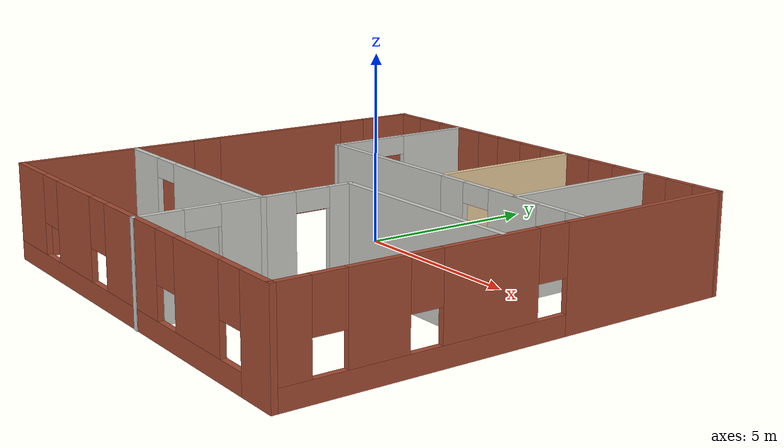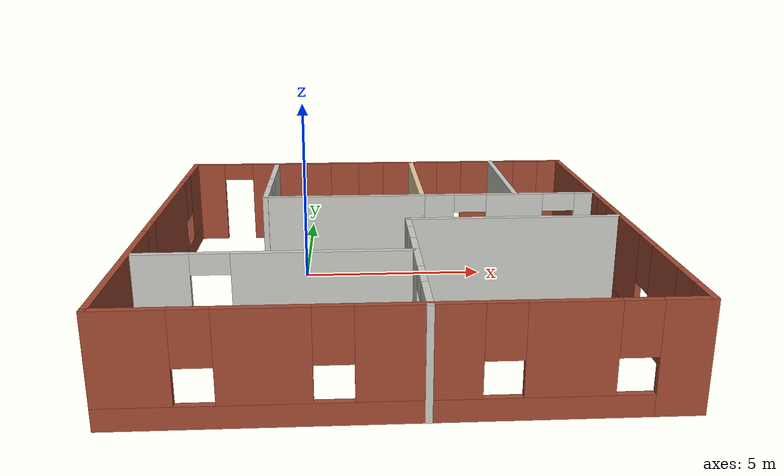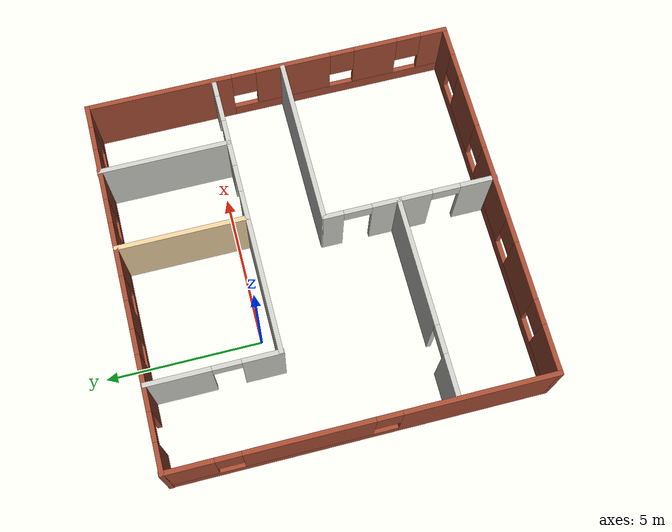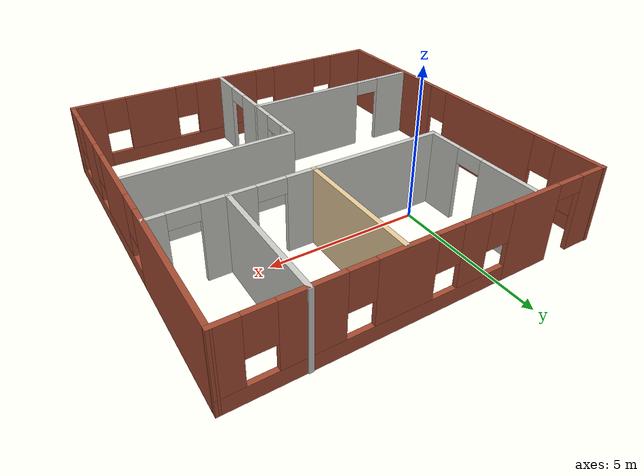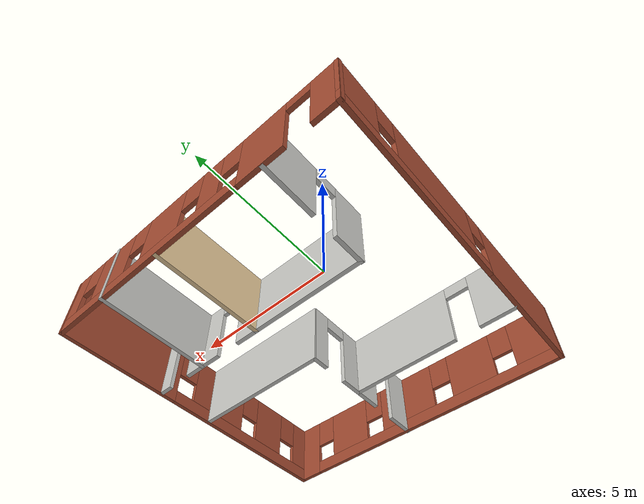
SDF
<?xml version='1.0'?>
<sdf version='1.6'>
  <model name='building'>
    <pose frame=''>2.23915 -2.24189 0 0 -0 0</pose>
    <link name='Wall_0'>
      <pose frame=''>-5.91755 0.003133 0 0 -0 1.5708</pose>
      <visual name='Wall_0_Visual_0'>
        <pose frame=''>-3.58906 0 1.25 0 -0 0</pose>
        <geometry>
          <box>
            <size>4.82188 0.15 2.5</size>
          </box>
        </geometry>
        <material>
          <script>
            <uri>file://media/materials/scripts/gazebo.material</uri>
            <name>Gazebo/Bricks</name>
          </script>
          <ambient>1 1 1 1</ambient>
        </material>
        <meta>
          <layer>0</layer>
        </meta>
      </visual>
      <collision name='Wall_0_Collision_0'>
        <geometry>
          <box>
            <size>4.82188 0.15 2.5</size>
          </box>
        </geometry>
        <pose frame=''>-3.58906 0 1.25 0 -0 0</pose>
      </collision>
      <visual name='Wall_0_Visual_1'>
        <pose frame=''>2.41094 0 0.25 0 -0 0</pose>
        <geometry>
          <box>
            <size>7.17812 0.15 0.5</size>
          </box>
        </geometry>
        <material>
          <script>
            <uri>file://media/materials/scripts/gazebo.material</uri>
            <name>Gazebo/Bricks</name>
          </script>
          <ambient>1 1 1 1</ambient>
        </material>
        <meta>
          <layer>0</layer>
        </meta>
      </visual>
      <collision name='Wall_0_Collision_1'>
        <geometry>
          <box>
            <size>7.17812 0.15 0.5</size>
          </box>
        </geometry>
        <pose frame=''>2.41094 0 0.25 0 -0 0</pose>
      </collision>
      <visual name='Wall_0_Visual_2'>
        <pose frame=''>1.60287 0 1.5 0 -0 0</pose>
        <geometry>
          <box>
            <size>3.96196 0.15 2</size>
          </box>
        </geometry>
        <material>
          <script>
            <uri>file://media/materials/scripts/gazebo.material</uri>
            <name>Gazebo/Bricks</name>
          </script>
          <ambient>1 1 1 1</ambient>
        </material>
        <meta>
          <layer>0</layer>
        </meta>
      </visual>
      <collision name='Wall_0_Collision_2'>
        <geometry>
          <box>
            <size>3.96196 0.15 2</size>
          </box>
        </geometry>
        <pose frame=''>1.60287 0 1.5 0 -0 0</pose>
      </collision>
      <visual name='Wall_0_Visual_3'>
        <pose frame=''>5.19192 0 1.5 0 -0 0</pose>
        <geometry>
          <box>
            <size>1.61615 0.15 2</size>
          </box>
        </geometry>
        <material>
          <script>
            <uri>file://media/materials/scripts/gazebo.material</uri>
            <name>Gazebo/Bricks</name>
          </script>
          <ambient>1 1 1 1</ambient>
        </material>
        <meta>
          <layer>0</layer>
        </meta>
      </visual>
      <collision name='Wall_0_Collision_3'>
        <geometry>
          <box>
            <size>1.61615 0.15 2</size>
          </box>
        </geometry>
        <pose frame=''>5.19192 0 1.5 0 -0 0</pose>
      </collision>
      <visual name='Wall_0_Visual_4'>
        <pose frame=''>-0.778116 0 1.9 0 -0 0</pose>
        <geometry>
          <box>
            <size>0.8 0.15 1.2</size>
          </box>
        </geometry>
        <material>
          <script>
            <uri>file://media/materials/scripts/gazebo.material</uri>
            <name>Gazebo/Bricks</name>
          </script>
          <ambient>1 1 1 1</ambient>
        </material>
        <meta>
          <layer>0</layer>
        </meta>
      </visual>
      <collision name='Wall_0_Collision_4'>
        <geometry>
          <box>
            <size>0.8 0.15 1.2</size>
          </box>
        </geometry>
        <pose frame=''>-0.778116 0 1.9 0 -0 0</pose>
      </collision>
      <visual name='Wall_0_Visual_5'>
        <pose frame=''>3.98385 0 1.9 0 -0 0</pose>
        <geometry>
          <box>
            <size>0.8 0.15 1.2</size>
          </box>
        </geometry>
        <material>
          <script>
            <uri>file://media/materials/scripts/gazebo.material</uri>
            <name>Gazebo/Bricks</name>
          </script>
          <ambient>1 1 1 1</ambient>
        </material>
        <meta>
          <layer>0</layer>
        </meta>
      </visual>
      <collision name='Wall_0_Collision_5'>
        <geometry>
          <box>
            <size>0.8 0.15 1.2</size>
          </box>
        </geometry>
        <pose frame=''>3.98385 0 1.9 0 -0 0</pose>
      </collision>
    </link>
    <link name='Wall_10'>
      <collision name='Wall_10_Collision'>
        <geometry>
          <box>
            <size>4.48462 0.15 2.5</size>
          </box>
        </geometry>
        <pose frame=''>0 0 1.25 0 -0 0</pose>
      </collision>
      <visual name='Wall_10_Visual'>
        <pose frame=''>0 0 1.25 0 -0 0</pose>
        <geometry>
          <box>
            <size>4.48462 0.15 2.5</size>
          </box>
        </geometry>
        <material>
          <script>
            <uri>file://media/materials/scripts/gazebo.material</uri>
            <name>Gazebo/CeilingTiled</name>
          </script>
          <ambient>0.921569 0.807843 0.615686 1</ambient>
        </material>
        <meta>
          <layer>0</layer>
        </meta>
      </visual>
      <pose frame=''>-1.11979 1.80988 0 0 -0 0</pose>
    </link>
    <link name='Wall_11'>
      <collision name='Wall_11_Collision'>
        <geometry>
          <box>
            <size>4.25 0.15 2.5</size>
          </box>
        </geometry>
        <pose frame=''>0 0 1.25 0 -0 0</pose>
      </collision>
      <visual name='Wall_11_Visual'>
        <pose frame=''>0 0 1.25 0 -0 0</pose>
        <geometry>
          <box>
            <size>4.25 0.15 2.5</size>
          </box>
        </geometry>
        <material>
          <script>
            <uri>file://media/materials/scripts/gazebo.material</uri>
            <name>Gazebo/Grey</name>
          </script>
          <ambient>0.921569 0.807843 0.615686 1</ambient>
        </material>
        <meta>
          <layer>0</layer>
        </meta>
      </visual>
      <pose frame=''>1.04751 3.85988 0 0 -0 1.5708</pose>
    </link>
    <link name='Wall_15'>
      <pose frame=''>3.47252 1.80988 0 0 -0 0</pose>
      <visual name='Wall_15_Visual_0'>
        <pose frame=''>-2.01342 0 1.25 0 -0 0</pose>
        <geometry>
          <box>
            <size>0.973156 0.15 2.5</size>
          </box>
        </geometry>
        <material>
          <script>
            <uri>file://media/materials/scripts/gazebo.material</uri>
            <name>Gazebo/CeilingTiled</name>
          </script>
          <ambient>0.996078 0.47451 0.0196078 1</ambient>
        </material>
        <meta>
          <layer>0</layer>
        </meta>
      </visual>
      <collision name='Wall_15_Collision_0'>
        <geometry>
          <box>
            <size>0.973156 0.15 2.5</size>
          </box>
        </geometry>
        <pose frame=''>-2.01342 0 1.25 0 -0 0</pose>
      </collision>
      <visual name='Wall_15_Visual_1'>
        <pose frame=''>0.174229 0 1.25 0 -0 0</pose>
        <geometry>
          <box>
            <size>1.60215 0.15 2.5</size>
          </box>
        </geometry>
        <material>
          <script>
            <uri>file://media/materials/scripts/gazebo.material</uri>
            <name>Gazebo/CeilingTiled</name>
          </script>
          <ambient>0.996078 0.47451 0.0196078 1</ambient>
        </material>
        <meta>
          <layer>0</layer>
        </meta>
      </visual>
      <collision name='Wall_15_Collision_1'>
        <geometry>
          <box>
            <size>1.60215 0.15 2.5</size>
          </box>
        </geometry>
        <pose frame=''>0.174229 0 1.25 0 -0 0</pose>
      </collision>
      <visual name='Wall_15_Visual_2'>
        <pose frame=''>2.18765 0 1.25 0 -0 0</pose>
        <geometry>
          <box>
            <size>0.624697 0.15 2.5</size>
          </box>
        </geometry>
        <material>
          <script>
            <uri>file://media/materials/scripts/gazebo.material</uri>
            <name>Gazebo/CeilingTiled</name>
          </script>
          <ambient>0.996078 0.47451 0.0196078 1</ambient>
        </material>
        <meta>
          <layer>0</layer>
        </meta>
      </visual>
      <collision name='Wall_15_Collision_2'>
        <geometry>
          <box>
            <size>0.624697 0.15 2.5</size>
          </box>
        </geometry>
        <pose frame=''>2.18765 0 1.25 0 -0 0</pose>
      </collision>
      <visual name='Wall_15_Visual_3'>
        <pose frame=''>-1.07684 0 2.25 0 -0 0</pose>
        <geometry>
          <box>
            <size>0.9 0.15 0.5</size>
          </box>
        </geometry>
        <material>
          <script>
            <uri>file://media/materials/scripts/gazebo.material</uri>
            <name>Gazebo/CeilingTiled</name>
          </script>
          <ambient>0.996078 0.47451 0.0196078 1</ambient>
        </material>
        <meta>
          <layer>0</layer>
        </meta>
      </visual>
      <collision name='Wall_15_Collision_3'>
        <geometry>
          <box>
            <size>0.9 0.15 0.5</size>
          </box>
        </geometry>
        <pose frame=''>-1.07684 0 2.25 0 -0 0</pose>
      </collision>
      <visual name='Wall_15_Visual_4'>
        <pose frame=''>1.4253 0 2.25 0 -0 0</pose>
        <geometry>
          <box>
            <size>0.9 0.15 0.5</size>
          </box>
        </geometry>
        <material>
          <script>
            <uri>file://media/materials/scripts/gazebo.material</uri>
            <name>Gazebo/CeilingTiled</name>
          </script>
          <ambient>0.996078 0.47451 0.0196078 1</ambient>
        </material>
        <meta>
          <layer>0</layer>
        </meta>
      </visual>
      <collision name='Wall_15_Collision_4'>
        <geometry>
          <box>
            <size>0.9 0.15 0.5</size>
          </box>
        </geometry>
        <pose frame=''>1.4253 0 2.25 0 -0 0</pose>
      </collision>
    </link>
    <link name='Wall_17'>
      <collision name='Wall_17_Collision'>
        <geometry>
          <box>
            <size>4.25 0.15 2.5</size>
          </box>
        </geometry>
        <pose frame=''>0 0 1.25 0 -0 0</pose>
      </collision>
      <visual name='Wall_17_Visual'>
        <pose frame=''>0 0 1.25 0 -0 0</pose>
        <geometry>
          <box>
            <size>4.25 0.15 2.5</size>
          </box>
        </geometry>
        <material>
          <script>
            <uri>file://media/materials/scripts/gazebo.material</uri>
            <name>Gazebo/CeilingTiled</name>
          </script>
          <ambient>0.996078 0.47451 0.0196078 1</ambient>
        </material>
        <meta>
          <layer>0</layer>
        </meta>
      </visual>
      <pose frame=''>3.6718 3.89596 0 0 0 -1.5708</pose>
    </link>
    <link name='Wall_2'>
      <pose frame=''>0 5.91836 0 0 -0 0.000595</pose>
      <visual name='Wall_2_Visual_0'>
        <pose frame=''>-5.50579 0 1.25 0 -0 0</pose>
        <geometry>
          <box>
            <size>1.00011 0.15 2.5</size>
          </box>
        </geometry>
        <material>
          <script>
            <uri>file://media/materials/scripts/gazebo.material</uri>
            <name>Gazebo/Bricks</name>
          </script>
          <ambient>0.921569 0.807843 0.615686 1</ambient>
        </material>
        <meta>
          <layer>0</layer>
        </meta>
      </visual>
      <collision name='Wall_2_Collision_0'>
        <geometry>
          <box>
            <size>1.00011 0.15 2.5</size>
          </box>
        </geometry>
        <pose frame=''>-5.50579 0 1.25 0 -0 0</pose>
      </collision>
      <visual name='Wall_2_Visual_1'>
        <pose frame=''>-3.235 0 1.25 0 -0 0</pose>
        <geometry>
          <box>
            <size>1.74147 0.15 2.5</size>
          </box>
        </geometry>
        <material>
          <script>
            <uri>file://media/materials/scripts/gazebo.material</uri>
            <name>Gazebo/Bricks</name>
          </script>
          <ambient>0.921569 0.807843 0.615686 1</ambient>
        </material>
        <meta>
          <layer>0</layer>
        </meta>
      </visual>
      <collision name='Wall_2_Collision_1'>
        <geometry>
          <box>
            <size>1.74147 0.15 2.5</size>
          </box>
        </geometry>
        <pose frame=''>-3.235 0 1.25 0 -0 0</pose>
      </collision>
      <visual name='Wall_2_Visual_2'>
        <pose frame=''>1.82079 0 0.25 0 -0 0</pose>
        <geometry>
          <box>
            <size>8.37012 0.15 0.5</size>
          </box>
        </geometry>
        <material>
          <script>
            <uri>file://media/materials/scripts/gazebo.material</uri>
            <name>Gazebo/Bricks</name>
          </script>
          <ambient>0.921569 0.807843 0.615686 1</ambient>
        </material>
        <meta>
          <layer>0</layer>
        </meta>
      </visual>
      <collision name='Wall_2_Collision_2'>
        <geometry>
          <box>
            <size>8.37012 0.15 0.5</size>
          </box>
        </geometry>
        <pose frame=''>1.82079 0 0.25 0 -0 0</pose>
      </collision>
      <visual name='Wall_2_Visual_3'>
        <pose frame=''>-1.1134 0 1.5 0 -0 0</pose>
        <geometry>
          <box>
            <size>0.901735 0.15 2</size>
          </box>
        </geometry>
        <material>
          <script>
            <uri>file://media/materials/scripts/gazebo.material</uri>
            <name>Gazebo/Bricks</name>
          </script>
          <ambient>0.921569 0.807843 0.615686 1</ambient>
        </material>
        <meta>
          <layer>0</layer>
        </meta>
      </visual>
      <collision name='Wall_2_Collision_3'>
        <geometry>
          <box>
            <size>0.901735 0.15 2</size>
          </box>
        </geometry>
        <pose frame=''>-1.1134 0 1.5 0 -0 0</pose>
      </collision>
      <visual name='Wall_2_Visual_4'>
        <pose frame=''>1.02146 0 1.5 0 -0 0</pose>
        <geometry>
          <box>
            <size>1.76798 0.15 2</size>
          </box>
        </geometry>
        <material>
          <script>
            <uri>file://media/materials/scripts/gazebo.material</uri>
            <name>Gazebo/Bricks</name>
          </script>
          <ambient>0.921569 0.807843 0.615686 1</ambient>
        </material>
        <meta>
          <layer>0</layer>
        </meta>
      </visual>
      <collision name='Wall_2_Collision_4'>
        <geometry>
          <box>
            <size>1.76798 0.15 2</size>
          </box>
        </geometry>
        <pose frame=''>1.02146 0 1.5 0 -0 0</pose>
      </collision>
      <visual name='Wall_2_Visual_5'>
        <pose frame=''>3.57391 0 1.5 0 -0 0</pose>
        <geometry>
          <box>
            <size>1.73691 0.15 2</size>
          </box>
        </geometry>
        <material>
          <script>
            <uri>file://media/materials/scripts/gazebo.material</uri>
            <name>Gazebo/Bricks</name>
          </script>
          <ambient>0.921569 0.807843 0.615686 1</ambient>
        </material>
        <meta>
          <layer>0</layer>
        </meta>
      </visual>
      <collision name='Wall_2_Collision_5'>
        <geometry>
          <box>
            <size>1.73691 0.15 2</size>
          </box>
        </geometry>
        <pose frame=''>3.57391 0 1.5 0 -0 0</pose>
      </collision>
      <visual name='Wall_2_Visual_6'>
        <pose frame=''>5.62411 0 1.5 0 -0 0</pose>
        <geometry>
          <box>
            <size>0.763489 0.15 2</size>
          </box>
        </geometry>
        <material>
          <script>
            <uri>file://media/materials/scripts/gazebo.material</uri>
            <name>Gazebo/Bricks</name>
          </script>
          <ambient>0.921569 0.807843 0.615686 1</ambient>
        </material>
        <meta>
          <layer>0</layer>
        </meta>
      </visual>
      <collision name='Wall_2_Collision_6'>
        <geometry>
          <box>
            <size>0.763489 0.15 2</size>
          </box>
        </geometry>
        <pose frame=''>5.62411 0 1.5 0 -0 0</pose>
      </collision>
      <visual name='Wall_2_Visual_7'>
        <pose frame=''>-1.96426 0 1.9 0 -0 0</pose>
        <geometry>
          <box>
            <size>0.8 0.15 1.2</size>
          </box>
        </geometry>
        <material>
          <script>
            <uri>file://media/materials/scripts/gazebo.material</uri>
            <name>Gazebo/Bricks</name>
          </script>
          <ambient>0.921569 0.807843 0.615686 1</ambient>
        </material>
        <meta>
          <layer>0</layer>
        </meta>
      </visual>
      <collision name='Wall_2_Collision_7'>
        <geometry>
          <box>
            <size>0.8 0.15 1.2</size>
          </box>
        </geometry>
        <pose frame=''>-1.96426 0 1.9 0 -0 0</pose>
      </collision>
      <visual name='Wall_2_Visual_8'>
        <pose frame=''>-0.26253 0 1.9 0 -0 0</pose>
        <geometry>
          <box>
            <size>0.8 0.15 1.2</size>
          </box>
        </geometry>
        <material>
          <script>
            <uri>file://media/materials/scripts/gazebo.material</uri>
            <name>Gazebo/Bricks</name>
          </script>
          <ambient>0.921569 0.807843 0.615686 1</ambient>
        </material>
        <meta>
          <layer>0</layer>
        </meta>
      </visual>
      <collision name='Wall_2_Collision_8'>
        <geometry>
          <box>
            <size>0.8 0.15 1.2</size>
          </box>
        </geometry>
        <pose frame=''>-0.26253 0 1.9 0 -0 0</pose>
      </collision>
      <visual name='Wall_2_Visual_9'>
        <pose frame=''>2.30545 0 1.9 0 -0 0</pose>
        <geometry>
          <box>
            <size>0.8 0.15 1.2</size>
          </box>
        </geometry>
        <material>
          <script>
            <uri>file://media/materials/scripts/gazebo.material</uri>
            <name>Gazebo/Bricks</name>
          </script>
          <ambient>0.921569 0.807843 0.615686 1</ambient>
        </material>
        <meta>
          <layer>0</layer>
        </meta>
      </visual>
      <collision name='Wall_2_Collision_9'>
        <geometry>
          <box>
            <size>0.8 0.15 1.2</size>
          </box>
        </geometry>
        <pose frame=''>2.30545 0 1.9 0 -0 0</pose>
      </collision>
      <visual name='Wall_2_Visual_10'>
        <pose frame=''>4.84236 0 1.9 0 -0 0</pose>
        <geometry>
          <box>
            <size>0.8 0.15 1.2</size>
          </box>
        </geometry>
        <material>
          <script>
            <uri>file://media/materials/scripts/gazebo.material</uri>
            <name>Gazebo/Bricks</name>
          </script>
          <ambient>0.921569 0.807843 0.615686 1</ambient>
        </material>
        <meta>
          <layer>0</layer>
        </meta>
      </visual>
      <collision name='Wall_2_Collision_10'>
        <geometry>
          <box>
            <size>0.8 0.15 1.2</size>
          </box>
        </geometry>
        <pose frame=''>4.84236 0 1.9 0 -0 0</pose>
      </collision>
      <visual name='Wall_2_Visual_11'>
        <pose frame=''>-4.55574 0 2.25 0 -0 0</pose>
        <geometry>
          <box>
            <size>0.9 0.15 0.5</size>
          </box>
        </geometry>
        <material>
          <script>
            <uri>file://media/materials/scripts/gazebo.material</uri>
            <name>Gazebo/Bricks</name>
          </script>
          <ambient>0.921569 0.807843 0.615686 1</ambient>
        </material>
        <meta>
          <layer>0</layer>
        </meta>
      </visual>
      <collision name='Wall_2_Collision_11'>
        <geometry>
          <box>
            <size>0.9 0.15 0.5</size>
          </box>
        </geometry>
        <pose frame=''>-4.55574 0 2.25 0 -0 0</pose>
      </collision>
    </link>
    <link name='Wall_20'>
      <pose frame=''>-2.69192 -2.84596 0 0 -0 0</pose>
      <visual name='Wall_20_Visual_0'>
        <pose frame=''>-2.55329 0 1.25 0 -0 0</pose>
        <geometry>
          <box>
            <size>1.39341 0.15 2.5</size>
          </box>
        </geometry>
        <material>
          <script>
            <uri>file://media/materials/scripts/gazebo.material</uri>
            <name>Gazebo/CeilingTiled</name>
          </script>
          <ambient>1 0.764706 0.305882 1</ambient>
        </material>
        <meta>
          <layer>0</layer>
        </meta>
      </visual>
      <collision name='Wall_20_Collision_0'>
        <geometry>
          <box>
            <size>1.39341 0.15 2.5</size>
          </box>
        </geometry>
        <pose frame=''>-2.55329 0 1.25 0 -0 0</pose>
      </collision>
      <visual name='Wall_20_Visual_1'>
        <pose frame=''>1.14671 0 1.25 0 -0 0</pose>
        <geometry>
          <box>
            <size>4.20659 0.15 2.5</size>
          </box>
        </geometry>
        <material>
          <script>
            <uri>file://media/materials/scripts/gazebo.material</uri>
            <name>Gazebo/CeilingTiled</name>
          </script>
          <ambient>1 0.764706 0.305882 1</ambient>
        </material>
        <meta>
          <layer>0</layer>
        </meta>
      </visual>
      <collision name='Wall_20_Collision_1'>
        <geometry>
          <box>
            <size>4.20659 0.15 2.5</size>
          </box>
        </geometry>
        <pose frame=''>1.14671 0 1.25 0 -0 0</pose>
      </collision>
      <visual name='Wall_20_Visual_2'>
        <pose frame=''>-1.40659 0 2.25 0 -0 0</pose>
        <geometry>
          <box>
            <size>0.9 0.15 0.5</size>
          </box>
        </geometry>
        <material>
          <script>
            <uri>file://media/materials/scripts/gazebo.material</uri>
            <name>Gazebo/CeilingTiled</name>
          </script>
          <ambient>1 0.764706 0.305882 1</ambient>
        </material>
        <meta>
          <layer>0</layer>
        </meta>
      </visual>
      <collision name='Wall_20_Collision_2'>
        <geometry>
          <box>
            <size>0.9 0.15 0.5</size>
          </box>
        </geometry>
        <pose frame=''>-1.40659 0 2.25 0 -0 0</pose>
      </collision>
    </link>
    <link name='Wall_21'>
      <pose frame=''>0.483078 -4.39596 0 0 0 -1.5708</pose>
      <visual name='Wall_21_Visual_0'>
        <pose frame=''>-1.05225 0 1.25 0 -0 0</pose>
        <geometry>
          <box>
            <size>1.14549 0.15 2.5</size>
          </box>
        </geometry>
        <material>
          <script>
            <uri>file://media/materials/scripts/gazebo.material</uri>
            <name>Gazebo/CeilingTiled</name>
          </script>
          <ambient>0.435294 0.796078 0.67451 1</ambient>
        </material>
        <meta>
          <layer>0</layer>
        </meta>
      </visual>
      <collision name='Wall_21_Collision_0'>
        <geometry>
          <box>
            <size>1.14549 0.15 2.5</size>
          </box>
        </geometry>
        <pose frame=''>-1.05225 0 1.25 0 -0 0</pose>
      </collision>
      <visual name='Wall_21_Visual_1'>
        <pose frame=''>1.02275 0 1.25 0 -0 0</pose>
        <geometry>
          <box>
            <size>1.20451 0.15 2.5</size>
          </box>
        </geometry>
        <material>
          <script>
            <uri>file://media/materials/scripts/gazebo.material</uri>
            <name>Gazebo/CeilingTiled</name>
          </script>
          <ambient>0.435294 0.796078 0.67451 1</ambient>
        </material>
        <meta>
          <layer>0</layer>
        </meta>
      </visual>
      <collision name='Wall_21_Collision_1'>
        <geometry>
          <box>
            <size>1.20451 0.15 2.5</size>
          </box>
        </geometry>
        <pose frame=''>1.02275 0 1.25 0 -0 0</pose>
      </collision>
      <visual name='Wall_21_Visual_2'>
        <pose frame=''>-0.029508 0 2.25 0 -0 0</pose>
        <geometry>
          <box>
            <size>0.9 0.15 0.5</size>
          </box>
        </geometry>
        <material>
          <script>
            <uri>file://media/materials/scripts/gazebo.material</uri>
            <name>Gazebo/CeilingTiled</name>
          </script>
          <ambient>0.435294 0.796078 0.67451 1</ambient>
        </material>
        <meta>
          <layer>0</layer>
        </meta>
      </visual>
      <collision name='Wall_21_Collision_2'>
        <geometry>
          <box>
            <size>0.9 0.15 0.5</size>
          </box>
        </geometry>
        <pose frame=''>-0.029508 0 2.25 0 -0 0</pose>
      </collision>
    </link>
    <link name='Wall_23'>
      <collision name='Wall_23_Collision'>
        <geometry>
          <box>
            <size>5.5 0.15 2.5</size>
          </box>
        </geometry>
        <pose frame=''>0 0 1.25 0 -0 0</pose>
      </collision>
      <visual name='Wall_23_Visual'>
        <pose frame=''>0 0 1.25 0 -0 0</pose>
        <geometry>
          <box>
            <size>5.5 0.15 2.5</size>
          </box>
        </geometry>
        <material>
          <script>
            <uri>file://media/materials/scripts/gazebo.material</uri>
            <name>Gazebo/CeilingTiled</name>
          </script>
          <ambient>0.435294 0.796078 0.67451 1</ambient>
        </material>
        <meta>
          <layer>0</layer>
        </meta>
      </visual>
      <pose frame=''>3.17532 -0.459711 0 0 -0 3.14159</pose>
    </link>
    <link name='Wall_25'>
      <pose frame=''>0.483078 -1.67096 0 0 -0 1.5708</pose>
      <visual name='Wall_25_Visual_0'>
        <pose frame=''>-0.782101 0 1.25 0 -0 0</pose>
        <geometry>
          <box>
            <size>0.935797 0.15 2.5</size>
          </box>
        </geometry>
        <material>
          <script>
            <uri>file://media/materials/scripts/gazebo.material</uri>
            <name>Gazebo/CeilingTiled</name>
          </script>
          <ambient>0.435294 0.796078 0.67451 1</ambient>
        </material>
        <meta>
          <layer>0</layer>
        </meta>
      </visual>
      <collision name='Wall_25_Collision_0'>
        <geometry>
          <box>
            <size>0.935797 0.15 2.5</size>
          </box>
        </geometry>
        <pose frame=''>-0.782101 0 1.25 0 -0 0</pose>
      </collision>
      <visual name='Wall_25_Visual_1'>
        <pose frame=''>0.917899 0 1.25 0 -0 0</pose>
        <geometry>
          <box>
            <size>0.664203 0.15 2.5</size>
          </box>
        </geometry>
        <material>
          <script>
            <uri>file://media/materials/scripts/gazebo.material</uri>
            <name>Gazebo/CeilingTiled</name>
          </script>
          <ambient>0.435294 0.796078 0.67451 1</ambient>
        </material>
        <meta>
          <layer>0</layer>
        </meta>
      </visual>
      <collision name='Wall_25_Collision_1'>
        <geometry>
          <box>
            <size>0.664203 0.15 2.5</size>
          </box>
        </geometry>
        <pose frame=''>0.917899 0 1.25 0 -0 0</pose>
      </collision>
      <visual name='Wall_25_Visual_2'>
        <pose frame=''>0.135797 0 2.25 0 -0 0</pose>
        <geometry>
          <box>
            <size>0.9 0.15 0.5</size>
          </box>
        </geometry>
        <material>
          <script>
            <uri>file://media/materials/scripts/gazebo.material</uri>
            <name>Gazebo/CeilingTiled</name>
          </script>
          <ambient>0.435294 0.796078 0.67451 1</ambient>
        </material>
        <meta>
          <layer>0</layer>
        </meta>
      </visual>
      <collision name='Wall_25_Collision_2'>
        <geometry>
          <box>
            <size>0.9 0.15 0.5</size>
          </box>
        </geometry>
        <pose frame=''>0.135797 0 2.25 0 -0 0</pose>
      </collision>
    </link>
    <link name='Wall_3'>
      <pose frame=''>5.93085 -0.003114 0 0 0 -1.5708</pose>
      <visual name='Wall_3_Visual_0'>
        <pose frame=''>-3.61577 0 1.25 0 -0 0</pose>
        <geometry>
          <box>
            <size>4.76845 0.15 2.5</size>
          </box>
        </geometry>
        <material>
          <script>
            <uri>file://media/materials/scripts/gazebo.material</uri>
            <name>Gazebo/Bricks</name>
          </script>
          <ambient>1 1 1 1</ambient>
        </material>
        <meta>
          <layer>0</layer>
        </meta>
      </visual>
      <collision name='Wall_3_Collision_0'>
        <geometry>
          <box>
            <size>4.76845 0.15 2.5</size>
          </box>
        </geometry>
        <pose frame=''>-3.61577 0 1.25 0 -0 0</pose>
      </collision>
      <visual name='Wall_3_Visual_1'>
        <pose frame=''>2.38423 0 0.25 0 -0 0</pose>
        <geometry>
          <box>
            <size>7.23155 0.15 0.5</size>
          </box>
        </geometry>
        <material>
          <script>
            <uri>file://media/materials/scripts/gazebo.material</uri>
            <name>Gazebo/Bricks</name>
          </script>
          <ambient>1 1 1 1</ambient>
        </material>
        <meta>
          <layer>0</layer>
        </meta>
      </visual>
      <collision name='Wall_3_Collision_1'>
        <geometry>
          <box>
            <size>7.23155 0.15 0.5</size>
          </box>
        </geometry>
        <pose frame=''>2.38423 0 0.25 0 -0 0</pose>
      </collision>
      <visual name='Wall_3_Visual_2'>
        <pose frame=''>0.812347 0 1.5 0 -0 0</pose>
        <geometry>
          <box>
            <size>2.48779 0.15 2</size>
          </box>
        </geometry>
        <material>
          <script>
            <uri>file://media/materials/scripts/gazebo.material</uri>
            <name>Gazebo/Bricks</name>
          </script>
          <ambient>1 1 1 1</ambient>
        </material>
        <meta>
          <layer>0</layer>
        </meta>
      </visual>
      <collision name='Wall_3_Collision_2'>
        <geometry>
          <box>
            <size>2.48779 0.15 2</size>
          </box>
        </geometry>
        <pose frame=''>0.812347 0 1.5 0 -0 0</pose>
      </collision>
      <visual name='Wall_3_Visual_3'>
        <pose frame=''>3.57916 0 1.5 0 -0 0</pose>
        <geometry>
          <box>
            <size>1.44583 0.15 2</size>
          </box>
        </geometry>
        <material>
          <script>
            <uri>file://media/materials/scripts/gazebo.material</uri>
            <name>Gazebo/Bricks</name>
          </script>
          <ambient>1 1 1 1</ambient>
        </material>
        <meta>
          <layer>0</layer>
        </meta>
      </visual>
      <collision name='Wall_3_Collision_3'>
        <geometry>
          <box>
            <size>1.44583 0.15 2</size>
          </box>
        </geometry>
        <pose frame=''>3.57916 0 1.5 0 -0 0</pose>
      </collision>
      <visual name='Wall_3_Visual_4'>
        <pose frame=''>5.55103 0 1.5 0 -0 0</pose>
        <geometry>
          <box>
            <size>0.89793 0.15 2</size>
          </box>
        </geometry>
        <material>
          <script>
            <uri>file://media/materials/scripts/gazebo.material</uri>
            <name>Gazebo/Bricks</name>
          </script>
          <ambient>1 1 1 1</ambient>
        </material>
        <meta>
          <layer>0</layer>
        </meta>
      </visual>
      <collision name='Wall_3_Collision_4'>
        <geometry>
          <box>
            <size>0.89793 0.15 2</size>
          </box>
        </geometry>
        <pose frame=''>5.55103 0 1.5 0 -0 0</pose>
      </collision>
      <visual name='Wall_3_Visual_5'>
        <pose frame=''>-0.831546 0 1.9 0 -0 0</pose>
        <geometry>
          <box>
            <size>0.8 0.15 1.2</size>
          </box>
        </geometry>
        <material>
          <script>
            <uri>file://media/materials/scripts/gazebo.material</uri>
            <name>Gazebo/Bricks</name>
          </script>
          <ambient>1 1 1 1</ambient>
        </material>
        <meta>
          <layer>0</layer>
        </meta>
      </visual>
      <collision name='Wall_3_Collision_5'>
        <geometry>
          <box>
            <size>0.8 0.15 1.2</size>
          </box>
        </geometry>
        <pose frame=''>-0.831546 0 1.9 0 -0 0</pose>
      </collision>
      <visual name='Wall_3_Visual_6'>
        <pose frame=''>2.45624 0 1.9 0 -0 0</pose>
        <geometry>
          <box>
            <size>0.8 0.15 1.2</size>
          </box>
        </geometry>
        <material>
          <script>
            <uri>file://media/materials/scripts/gazebo.material</uri>
            <name>Gazebo/Bricks</name>
          </script>
          <ambient>1 1 1 1</ambient>
        </material>
        <meta>
          <layer>0</layer>
        </meta>
      </visual>
      <collision name='Wall_3_Collision_6'>
        <geometry>
          <box>
            <size>0.8 0.15 1.2</size>
          </box>
        </geometry>
        <pose frame=''>2.45624 0 1.9 0 -0 0</pose>
      </collision>
      <visual name='Wall_3_Visual_7'>
        <pose frame=''>4.70207 0 1.9 0 -0 0</pose>
        <geometry>
          <box>
            <size>0.8 0.15 1.2</size>
          </box>
        </geometry>
        <material>
          <script>
            <uri>file://media/materials/scripts/gazebo.material</uri>
            <name>Gazebo/Bricks</name>
          </script>
          <ambient>1 1 1 1</ambient>
        </material>
        <meta>
          <layer>0</layer>
        </meta>
      </visual>
      <collision name='Wall_3_Collision_7'>
        <geometry>
          <box>
            <size>0.8 0.15 1.2</size>
          </box>
        </geometry>
        <pose frame=''>4.70207 0 1.9 0 -0 0</pose>
      </collision>
    </link>
    <link name='Wall_4'>
      <pose frame=''>0.00585 -5.92811 0 0 -0 3.14159</pose>
      <visual name='Wall_4_Visual_0'>
        <pose frame=''>-5.4743 0 1.25 0 -0 0</pose>
        <geometry>
          <box>
            <size>1.05139 0.15 2.5</size>
          </box>
        </geometry>
        <material>
          <script>
            <uri>file://media/materials/scripts/gazebo.material</uri>
            <name>Gazebo/Bricks</name>
          </script>
          <ambient>1 1 1 1</ambient>
        </material>
        <meta>
          <layer>0</layer>
        </meta>
      </visual>
      <collision name='Wall_4_Collision_0'>
        <geometry>
          <box>
            <size>1.05139 0.15 2.5</size>
          </box>
        </geometry>
        <pose frame=''>-5.4743 0 1.25 0 -0 0</pose>
      </collision>
      <visual name='Wall_4_Visual_1'>
        <pose frame=''>0.525697 0 0.25 0 -0 0</pose>
        <geometry>
          <box>
            <size>10.9486 0.15 0.5</size>
          </box>
        </geometry>
        <material>
          <script>
            <uri>file://media/materials/scripts/gazebo.material</uri>
            <name>Gazebo/Bricks</name>
          </script>
          <ambient>1 1 1 1</ambient>
        </material>
        <meta>
          <layer>0</layer>
        </meta>
      </visual>
      <collision name='Wall_4_Collision_1'>
        <geometry>
          <box>
            <size>10.9486 0.15 0.5</size>
          </box>
        </geometry>
        <pose frame=''>0.525697 0 0.25 0 -0 0</pose>
      </collision>
      <visual name='Wall_4_Visual_2'>
        <pose frame=''>-3.23854 0 1.5 0 -0 0</pose>
        <geometry>
          <box>
            <size>1.82013 0.15 2</size>
          </box>
        </geometry>
        <material>
          <script>
            <uri>file://media/materials/scripts/gazebo.material</uri>
            <name>Gazebo/Bricks</name>
          </script>
          <ambient>1 1 1 1</ambient>
        </material>
        <meta>
          <layer>0</layer>
        </meta>
      </visual>
      <collision name='Wall_4_Collision_2'>
        <geometry>
          <box>
            <size>1.82013 0.15 2</size>
          </box>
        </geometry>
        <pose frame=''>-3.23854 0 1.5 0 -0 0</pose>
      </collision>
      <visual name='Wall_4_Visual_3'>
        <pose frame=''>-0.290889 0 1.5 0 -0 0</pose>
        <geometry>
          <box>
            <size>2.47517 0.15 2</size>
          </box>
        </geometry>
        <material>
          <script>
            <uri>file://media/materials/scripts/gazebo.material</uri>
            <name>Gazebo/Bricks</name>
          </script>
          <ambient>1 1 1 1</ambient>
        </material>
        <meta>
          <layer>0</layer>
        </meta>
      </visual>
      <collision name='Wall_4_Collision_3'>
        <geometry>
          <box>
            <size>2.47517 0.15 2</size>
          </box>
        </geometry>
        <pose frame=''>-0.290889 0 1.5 0 -0 0</pose>
      </collision>
      <visual name='Wall_4_Visual_4'>
        <pose frame=''>2.68016 0 1.5 0 -0 0</pose>
        <geometry>
          <box>
            <size>1.86692 0.15 2</size>
          </box>
        </geometry>
        <material>
          <script>
            <uri>file://media/materials/scripts/gazebo.material</uri>
            <name>Gazebo/Bricks</name>
          </script>
          <ambient>1 1 1 1</ambient>
        </material>
        <meta>
          <layer>0</layer>
        </meta>
      </visual>
      <collision name='Wall_4_Collision_4'>
        <geometry>
          <box>
            <size>1.86692 0.15 2</size>
          </box>
        </geometry>
        <pose frame=''>2.68016 0 1.5 0 -0 0</pose>
      </collision>
      <visual name='Wall_4_Visual_5'>
        <pose frame=''>5.20681 0 1.5 0 -0 0</pose>
        <geometry>
          <box>
            <size>1.58638 0.15 2</size>
          </box>
        </geometry>
        <material>
          <script>
            <uri>file://media/materials/scripts/gazebo.material</uri>
            <name>Gazebo/Bricks</name>
          </script>
          <ambient>1 1 1 1</ambient>
        </material>
        <meta>
          <layer>0</layer>
        </meta>
      </visual>
      <collision name='Wall_4_Collision_5'>
        <geometry>
          <box>
            <size>1.58638 0.15 2</size>
          </box>
        </geometry>
        <pose frame=''>5.20681 0 1.5 0 -0 0</pose>
      </collision>
      <visual name='Wall_4_Visual_6'>
        <pose frame=''>-4.54861 0 1.9 0 -0 0</pose>
        <geometry>
          <box>
            <size>0.8 0.15 1.2</size>
          </box>
        </geometry>
        <material>
          <script>
            <uri>file://media/materials/scripts/gazebo.material</uri>
            <name>Gazebo/Bricks</name>
          </script>
          <ambient>1 1 1 1</ambient>
        </material>
        <meta>
          <layer>0</layer>
        </meta>
      </visual>
      <collision name='Wall_4_Collision_6'>
        <geometry>
          <box>
            <size>0.8 0.15 1.2</size>
          </box>
        </geometry>
        <pose frame=''>-4.54861 0 1.9 0 -0 0</pose>
      </collision>
      <visual name='Wall_4_Visual_7'>
        <pose frame=''>-1.92847 0 1.9 0 -0 0</pose>
        <geometry>
          <box>
            <size>0.8 0.15 1.2</size>
          </box>
        </geometry>
        <material>
          <script>
            <uri>file://media/materials/scripts/gazebo.material</uri>
            <name>Gazebo/Bricks</name>
          </script>
          <ambient>1 1 1 1</ambient>
        </material>
        <meta>
          <layer>0</layer>
        </meta>
      </visual>
      <collision name='Wall_4_Collision_7'>
        <geometry>
          <box>
            <size>0.8 0.15 1.2</size>
          </box>
        </geometry>
        <pose frame=''>-1.92847 0 1.9 0 -0 0</pose>
      </collision>
      <visual name='Wall_4_Visual_8'>
        <pose frame=''>1.34669 0 1.9 0 -0 0</pose>
        <geometry>
          <box>
            <size>0.8 0.15 1.2</size>
          </box>
        </geometry>
        <material>
          <script>
            <uri>file://media/materials/scripts/gazebo.material</uri>
            <name>Gazebo/Bricks</name>
          </script>
          <ambient>1 1 1 1</ambient>
        </material>
        <meta>
          <layer>0</layer>
        </meta>
      </visual>
      <collision name='Wall_4_Collision_8'>
        <geometry>
          <box>
            <size>0.8 0.15 1.2</size>
          </box>
        </geometry>
        <pose frame=''>1.34669 0 1.9 0 -0 0</pose>
      </collision>
      <visual name='Wall_4_Visual_9'>
        <pose frame=''>4.01362 0 1.9 0 -0 0</pose>
        <geometry>
          <box>
            <size>0.8 0.15 1.2</size>
          </box>
        </geometry>
        <material>
          <script>
            <uri>file://media/materials/scripts/gazebo.material</uri>
            <name>Gazebo/Bricks</name>
          </script>
          <ambient>1 1 1 1</ambient>
        </material>
        <meta>
          <layer>0</layer>
        </meta>
      </visual>
      <collision name='Wall_4_Collision_9'>
        <geometry>
          <box>
            <size>0.8 0.15 1.2</size>
          </box>
        </geometry>
        <pose frame=''>4.01362 0 1.9 0 -0 0</pose>
      </collision>
    </link>
    <link name='Wall_6'>
      <pose frame=''>-3.30684 3.83875 0 0 -0 1.5708</pose>
      <visual name='Wall_6_Visual_0'>
        <pose frame=''>-1.48317 0 1.25 0 -0 0</pose>
        <geometry>
          <box>
            <size>1.28365 0.15 2.5</size>
          </box>
        </geometry>
        <material>
          <script>
            <uri>file://media/materials/scripts/gazebo.material</uri>
            <name>Gazebo/CeilingTiled</name>
          </script>
          <ambient>0.760784 0.662745 0.627451 1</ambient>
        </material>
        <meta>
          <layer>0</layer>
        </meta>
      </visual>
      <collision name='Wall_6_Collision_0'>
        <geometry>
          <box>
            <size>1.28365 0.15 2.5</size>
          </box>
        </geometry>
        <pose frame=''>-1.48317 0 1.25 0 -0 0</pose>
      </collision>
      <visual name='Wall_6_Visual_1'>
        <pose frame=''>1.09183 0 1.25 0 -0 0</pose>
        <geometry>
          <box>
            <size>2.06635 0.15 2.5</size>
          </box>
        </geometry>
        <material>
          <script>
            <uri>file://media/materials/scripts/gazebo.material</uri>
            <name>Gazebo/CeilingTiled</name>
          </script>
          <ambient>0.760784 0.662745 0.627451 1</ambient>
        </material>
        <meta>
          <layer>0</layer>
        </meta>
      </visual>
      <collision name='Wall_6_Collision_1'>
        <geometry>
          <box>
            <size>2.06635 0.15 2.5</size>
          </box>
        </geometry>
        <pose frame=''>1.09183 0 1.25 0 -0 0</pose>
      </collision>
      <visual name='Wall_6_Visual_2'>
        <pose frame=''>-0.391348 0 2.25 0 -0 0</pose>
        <geometry>
          <box>
            <size>0.9 0.15 0.5</size>
          </box>
        </geometry>
        <material>
          <script>
            <uri>file://media/materials/scripts/gazebo.material</uri>
            <name>Gazebo/CeilingTiled</name>
          </script>
          <ambient>0.760784 0.662745 0.627451 1</ambient>
        </material>
        <meta>
          <layer>0</layer>
        </meta>
      </visual>
      <collision name='Wall_6_Collision_2'>
        <geometry>
          <box>
            <size>0.9 0.15 0.5</size>
          </box>
        </geometry>
        <pose frame=''>-0.391348 0 2.25 0 -0 0</pose>
      </collision>
    </link>
    <static>1</static>
  </model>
</sdf>
